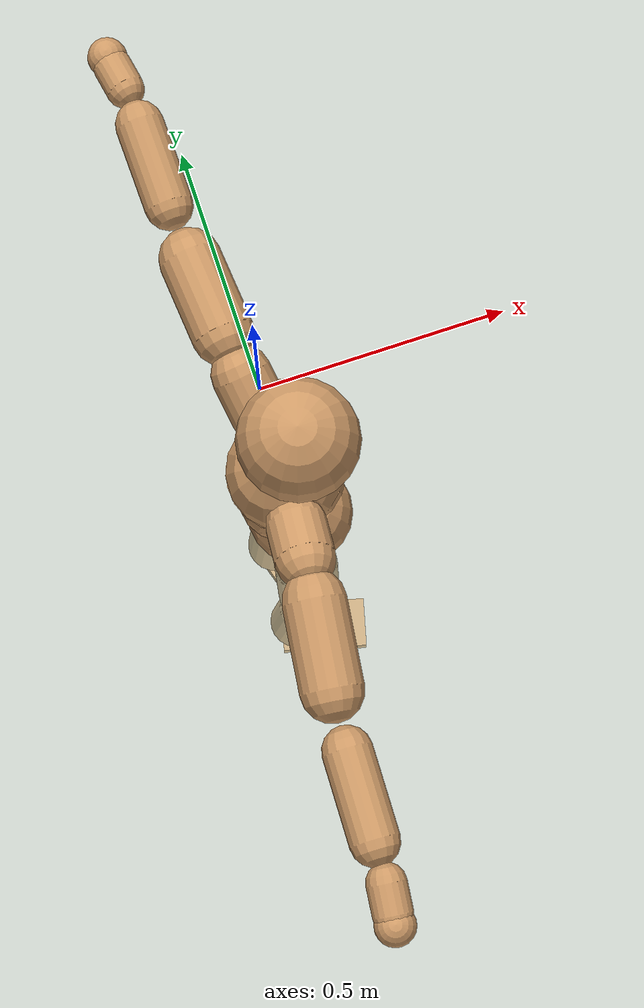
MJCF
<mujoco model="humanoid">
  <compiler coordinate="local"/>
  <default>
    <joint damping="0.0" armature="0.01" stiffness="0.0" limited="true"/>
    <geom conaffinity="1" condim="3" contype="7" margin="0.001" rgba="0.8 0.6 .4 1"/>
  </default>
  <asset>
    <texture type="skybox" builtin="gradient" rgb1=".4 .5 .6" rgb2="0 0 0" width="100" height="100"/>
    <texture builtin="flat" height="1278" mark="cross" markrgb="1 1 1" name="texgeom" random="0.01" rgb1="0.8 0.6 0.4" rgb2="0.8 0.6 0.4" type="cube" width="127"/>
    <texture builtin="checker" height="100" name="texplane" rgb1="0 0 0" rgb2="0.8 0.8 0.8" type="2d" width="100"/>
    <material name="MatPlane" reflectance="0.5" shininess="1" specular="1" texrepeat="60 60" texture="texplane"/>
    <material name="geom" texture="texgeom" texuniform="true"/>
  </asset>
  <worldbody>
    <light cutoff="100" diffuse="1 1 1" dir="-0 0 -1.3" directional="true" exponent="1" pos="0 0 1.3" specular=".1 .1 .1"/>
    <geom conaffinity="1" condim="3" name="floor" pos="0 0 0" rgba="0.8 0.9 0.8 1" size="100 100 .2" type="plane" material="MatPlane"/>
    <body name="Pelvis" pos="-0.0016 -0.2606 0.0297">
      <freejoint name="Pelvis"/>
      <geom type="sphere" contype="1" conaffinity="1" density="500" size="0.1016" pos="0.0000 0.0000 0.0000" name="Pelvis"/>
      <body name="L_Hip" pos="-0.0164 0.0609 -0.0854">
        <joint name="L_Hip_x" type="hinge" pos="0 0 0" axis="1 0 0" stiffness="800" damping="80" armature="0.02" range="-180.0000 180.0000"/>
        <joint name="L_Hip_y" type="hinge" pos="0 0 0" axis="0 1 0" stiffness="800" damping="80" armature="0.02" range="-180.0000 180.0000"/>
        <joint name="L_Hip_z" type="hinge" pos="0 0 0" axis="0 0 1" stiffness="800" damping="80" armature="0.02" range="-180.0000 180.0000"/>
        <geom type="capsule" contype="1" conaffinity="1" density="500" fromto="0.0015 0.0080 -0.0750 0.0060 0.0319 -0.3000" size="0.063" name="L_Hip"/>
        <body name="L_Knee" pos="0.0075 0.0399 -0.375">
          <joint name="L_Knee_x" type="hinge" pos="0 0 0" axis="1 0 0" stiffness="800" damping="80" armature="0.02" range="-180.0000 180.0000"/>
          <joint name="L_Knee_y" type="hinge" pos="0 0 0" axis="0 1 0" stiffness="800" damping="80" armature="0.02" range="-180.0000 180.0000"/>
          <joint name="L_Knee_z" type="hinge" pos="0 0 0" axis="0 0 1" stiffness="800" damping="80" armature="0.02" range="-180.0000 180.0000"/>
          <geom type="capsule" contype="1" conaffinity="1" density="500" fromto="-0.0078 -0.0032 -0.0834 -0.0314 -0.0126 -0.3338" size="0.0566" name="L_Knee"/>
          <body name="L_Ankle" pos="-0.0392 -0.0158 -0.4172">
            <joint name="L_Ankle_x" type="hinge" pos="0 0 0" axis="1 0 0" stiffness="800" damping="80" armature="0.02" range="-180.0000 180.0000"/>
            <joint name="L_Ankle_y" type="hinge" pos="0 0 0" axis="0 1 0" stiffness="800" damping="80" armature="0.02" range="-180.0000 180.0000"/>
            <joint name="L_Ankle_z" type="hinge" pos="0 0 0" axis="0 0 1" stiffness="800" damping="80" armature="0.02" range="-180.0000 180.0000"/>
            <geom type="box" contype="1" conaffinity="1" density="500" pos="0.0620 0.0193 -0.0299" size="0.0898 0.0517 0.0227" quat="0.9886 0.0000 0.0000 0.1505" name="L_Ankle"/>
            <body name="L_Toe" pos="0.1239 0.0386 -0.0599">
              <joint name="L_Toe_x" type="hinge" pos="0 0 0" axis="1 0 0" stiffness="500" damping="50" armature="0.02" range="-180.0000 180.0000"/>
              <joint name="L_Toe_y" type="hinge" pos="0 0 0" axis="0 1 0" stiffness="500" damping="50" armature="0.02" range="-180.0000 180.0000"/>
              <joint name="L_Toe_z" type="hinge" pos="0 0 0" axis="0 0 1" stiffness="500" damping="50" armature="0.02" range="-180.0000 180.0000"/>
              <geom type="box" contype="1" conaffinity="1" density="500" pos="0.0000 0.0000 0.0290" size="0.0011 0.0025 0.0011" quat="0.9878 0.0000 0.0000 0.1554" name="L_Toe"/>
            </body>
          </body>
        </body>
      </body>
      <body name="R_Hip" pos="-0.0119 -0.0626 -0.0939">
        <joint name="R_Hip_x" type="hinge" pos="0 0 0" axis="1 0 0" stiffness="800" damping="80" armature="0.02" range="-180.0000 180.0000"/>
        <joint name="R_Hip_y" type="hinge" pos="0 0 0" axis="0 1 0" stiffness="800" damping="80" armature="0.02" range="-180.0000 180.0000"/>
        <joint name="R_Hip_z" type="hinge" pos="0 0 0" axis="0 0 1" stiffness="800" damping="80" armature="0.02" range="-180.0000 180.0000"/>
        <geom type="capsule" contype="1" conaffinity="1" density="500" fromto="-0.0009 -0.0082 -0.0747 -0.0037 -0.0327 -0.2990" size="0.0626" name="R_Hip"/>
        <body name="R_Knee" pos="-0.0046 -0.0409 -0.3737">
          <joint name="R_Knee_x" type="hinge" pos="0 0 0" axis="1 0 0" stiffness="800" damping="80" armature="0.02" range="-180.0000 180.0000"/>
          <joint name="R_Knee_y" type="hinge" pos="0 0 0" axis="0 1 0" stiffness="800" damping="80" armature="0.02" range="-180.0000 180.0000"/>
          <joint name="R_Knee_z" type="hinge" pos="0 0 0" axis="0 0 1" stiffness="800" damping="80" armature="0.02" range="-180.0000 180.0000"/>
          <geom type="capsule" contype="1" conaffinity="1" density="500" fromto="-0.0073 0.0039 -0.0822 -0.0290 0.0157 -0.3287" size="0.0568" name="R_Knee"/>
          <body name="R_Ankle" pos="-0.0363 0.0196 -0.4108">
            <joint name="R_Ankle_x" type="hinge" pos="0 0 0" axis="1 0 0" stiffness="800" damping="80" armature="0.02" range="-180.0000 180.0000"/>
            <joint name="R_Ankle_y" type="hinge" pos="0 0 0" axis="0 1 0" stiffness="800" damping="80" armature="0.02" range="-180.0000 180.0000"/>
            <joint name="R_Ankle_z" type="hinge" pos="0 0 0" axis="0 0 1" stiffness="800" damping="80" armature="0.02" range="-180.0000 180.0000"/>
            <geom type="box" contype="1" conaffinity="1" density="500" pos="0.0663 -0.0171 -0.0306" size="0.092 0.0525 0.0224" quat="0.9920 0.0000 0.0000 -0.1259" name="R_Ankle"/>
            <body name="R_Toe" pos="0.1326 -0.0342 -0.0612">
              <joint name="R_Toe_x" type="hinge" pos="0 0 0" axis="1 0 0" stiffness="500" damping="50" armature="0.02" range="-180.0000 180.0000"/>
              <joint name="R_Toe_y" type="hinge" pos="0 0 0" axis="0 1 0" stiffness="500" damping="50" armature="0.02" range="-180.0000 180.0000"/>
              <joint name="R_Toe_z" type="hinge" pos="0 0 0" axis="0 0 1" stiffness="500" damping="50" armature="0.02" range="-180.0000 180.0000"/>
              <geom type="box" contype="1" conaffinity="1" density="500" pos="0.0000 0.0000 0.0312" size="0.0011 0.0026 0.0012" quat="0.9931 0.0000 0.0000 -0.1172" name="R_Toe"/>
            </body>
          </body>
        </body>
      </body>
      <body name="Torso" pos="-0.0401 0.0043 0.1307">
        <joint name="Torso_x" type="hinge" pos="0 0 0" axis="1 0 0" stiffness="1000" damping="100" armature="0.02" range="-180.0000 180.0000"/>
        <joint name="Torso_y" type="hinge" pos="0 0 0" axis="0 1 0" stiffness="1000" damping="100" armature="0.02" range="-180.0000 180.0000"/>
        <joint name="Torso_z" type="hinge" pos="0 0 0" axis="0 0 1" stiffness="1000" damping="100" armature="0.02" range="-180.0000 180.0000"/>
        <geom type="capsule" contype="1" conaffinity="1" density="500" fromto="0.0176 0.0032 0.0877 0.0117 0.0021 0.0585" size="0.086" name="Torso"/>
        <body name="Spine" pos="0.0293 0.0053 0.1462">
          <joint name="Spine_x" type="hinge" pos="0 0 0" axis="1 0 0" stiffness="1000" damping="100" armature="0.02" range="-180.0000 180.0000"/>
          <joint name="Spine_y" type="hinge" pos="0 0 0" axis="0 1 0" stiffness="1000" damping="100" armature="0.02" range="-180.0000 180.0000"/>
          <joint name="Spine_z" type="hinge" pos="0 0 0" axis="0 0 1" stiffness="1000" damping="100" armature="0.02" range="-180.0000 180.0000"/>
          <geom type="capsule" contype="1" conaffinity="1" density="500" fromto="0.0025 -0.0016 0.0359 0.0017 -0.0011 0.0239" size="0.084" name="Spine"/>
          <body name="Chest" pos="0.0041 -0.0027 0.0598">
            <joint name="Chest_x" type="hinge" pos="0 0 0" axis="1 0 0" stiffness="1000" damping="100" armature="0.02" range="-180.0000 180.0000"/>
            <joint name="Chest_y" type="hinge" pos="0 0 0" axis="0 1 0" stiffness="1000" damping="100" armature="0.02" range="-180.0000 180.0000"/>
            <joint name="Chest_z" type="hinge" pos="0 0 0" axis="0 0 1" stiffness="1000" damping="100" armature="0.02" range="-180.0000 180.0000"/>
            <geom type="capsule" contype="1" conaffinity="1" density="500" fromto="-0.0179 -0.0050 0.0912 -0.0119 -0.0033 0.0608" size="0.1054" name="Chest"/>
            <body name="Neck" pos="-0.0402 -0.0132 0.2209">
              <joint name="Neck_x" type="hinge" pos="0 0 0" axis="1 0 0" stiffness="500" damping="50" armature="0.02" range="-180.0000 180.0000"/>
              <joint name="Neck_y" type="hinge" pos="0 0 0" axis="0 1 0" stiffness="500" damping="50" armature="0.02" range="-180.0000 180.0000"/>
              <joint name="Neck_z" type="hinge" pos="0 0 0" axis="0 0 1" stiffness="500" damping="50" armature="0.02" range="-180.0000 180.0000"/>
              <geom type="capsule" contype="1" conaffinity="1" density="500" fromto="0.0103 0.0019 0.0180 0.0412 0.0076 0.0720" size="0.0468" name="Neck"/>
              <body name="Head" pos="0.0515 0.0095 0.0901">
                <joint name="Head_x" type="hinge" pos="0 0 0" axis="1 0 0" stiffness="500" damping="50" armature="0.02" range="-180.0000 180.0000"/>
                <joint name="Head_y" type="hinge" pos="0 0 0" axis="0 1 0" stiffness="500" damping="50" armature="0.02" range="-180.0000 180.0000"/>
                <joint name="Head_z" type="hinge" pos="0 0 0" axis="0 0 1" stiffness="500" damping="50" armature="0.02" range="-180.0000 180.0000"/>
                <geom type="sphere" contype="1" conaffinity="1" density="500" size="0.1072" pos="0.0000 0.0000 0.0000" name="Head"/>
              </body>
            </body>
            <body name="L_Thorax" pos="-0.0224 0.072 0.1182">
              <joint name="L_Thorax_x" type="hinge" pos="0 0 0" axis="1 0 0" stiffness="500" damping="50" armature="0.02" range="-180.0000 180.0000"/>
              <joint name="L_Thorax_y" type="hinge" pos="0 0 0" axis="0 1 0" stiffness="500" damping="50" armature="0.02" range="-180.0000 180.0000"/>
              <joint name="L_Thorax_z" type="hinge" pos="0 0 0" axis="0 0 1" stiffness="500" damping="50" armature="0.02" range="-180.0000 180.0000"/>
              <geom type="capsule" contype="1" conaffinity="1" density="500" fromto="-0.0040 0.0248 0.0087 -0.0161 0.0993 0.0349" size="0.054" name="L_Thorax"/>
              <body name="L_Shoulder" pos="-0.0201 0.1241 0.0436">
                <joint name="L_Shoulder_x" type="hinge" pos="0 0 0" axis="1 0 0" stiffness="500" damping="50" armature="0.02" range="-720.0000 720.0000"/>
                <joint name="L_Shoulder_y" type="hinge" pos="0 0 0" axis="0 1 0" stiffness="500" damping="50" armature="0.02" range="-720.0000 720.0000"/>
                <joint name="L_Shoulder_z" type="hinge" pos="0 0 0" axis="0 0 1" stiffness="500" damping="50" armature="0.02" range="-720.0000 720.0000"/>
                <geom type="capsule" contype="1" conaffinity="1" density="500" fromto="-0.0044 0.0508 -0.0027 -0.0178 0.2031 -0.0110" size="0.0562" name="L_Shoulder"/>
                <body name="L_Elbow" pos="-0.0222 0.2539 -0.0137">
                  <joint name="L_Elbow_x" type="hinge" pos="0 0 0" axis="1 0 0" stiffness="500" damping="50" armature="0.02" range="-720.0000 720.0000"/>
                  <joint name="L_Elbow_y" type="hinge" pos="0 0 0" axis="0 1 0" stiffness="500" damping="50" armature="0.02" range="-720.0000 720.0000"/>
                  <joint name="L_Elbow_z" type="hinge" pos="0 0 0" axis="0 0 1" stiffness="500" damping="50" armature="0.02" range="-720.0000 720.0000"/>
                  <geom type="capsule" contype="1" conaffinity="1" density="500" fromto="-0.0015 0.0528 0.0024 -0.0060 0.2111 0.0097" size="0.0438" name="L_Elbow"/>
                  <body name="L_Wrist" pos="-0.0074 0.2639 0.0121">
                    <joint name="L_Wrist_x" type="hinge" pos="0 0 0" axis="1 0 0" stiffness="300" damping="30" armature="0.02" range="-180.0000 180.0000"/>
                    <joint name="L_Wrist_y" type="hinge" pos="0 0 0" axis="0 1 0" stiffness="300" damping="30" armature="0.02" range="-180.0000 180.0000"/>
                    <joint name="L_Wrist_z" type="hinge" pos="0 0 0" axis="0 0 1" stiffness="300" damping="30" armature="0.02" range="-180.0000 180.0000"/>
                    <geom type="capsule" contype="1" conaffinity="1" density="500" fromto="-0.0031 0.0175 -0.0021 -0.0125 0.0701 -0.0085" size="0.0348" name="L_Wrist"/>
                    <body name="L_Hand" pos="-0.0156 0.0876 -0.0107">
                      <joint name="L_Hand_x" type="hinge" pos="0 0 0" axis="1 0 0" stiffness="300" damping="30" armature="0.02" range="-180.0000 180.0000"/>
                      <joint name="L_Hand_y" type="hinge" pos="0 0 0" axis="0 1 0" stiffness="300" damping="30" armature="0.02" range="-180.0000 180.0000"/>
                      <joint name="L_Hand_z" type="hinge" pos="0 0 0" axis="0 0 1" stiffness="300" damping="30" armature="0.02" range="-180.0000 180.0000"/>
                      <geom type="sphere" contype="1" conaffinity="1" density="500" size="0.0361" pos="0.0000 0.0000 0.0000" name="L_Hand"/>
                    </body>
                  </body>
                </body>
              </body>
            </body>
            <body name="R_Thorax" pos="-0.0267 -0.0837 0.1168">
              <joint name="R_Thorax_x" type="hinge" pos="0 0 0" axis="1 0 0" stiffness="500" damping="50" armature="0.02" range="-180.0000 180.0000"/>
              <joint name="R_Thorax_y" type="hinge" pos="0 0 0" axis="0 1 0" stiffness="500" damping="50" armature="0.02" range="-180.0000 180.0000"/>
              <joint name="R_Thorax_z" type="hinge" pos="0 0 0" axis="0 0 1" stiffness="500" damping="50" armature="0.02" range="-180.0000 180.0000"/>
              <geom type="capsule" contype="1" conaffinity="1" density="500" fromto="-0.0018 -0.0230 0.0090 -0.0072 -0.0920 0.0359" size="0.0541" name="R_Thorax"/>
              <body name="R_Shoulder" pos="-0.009 -0.1149 0.0449">
                <joint name="R_Shoulder_x" type="hinge" pos="0 0 0" axis="1 0 0" stiffness="500" damping="50" armature="0.02" range="-720.0000 720.0000"/>
                <joint name="R_Shoulder_y" type="hinge" pos="0 0 0" axis="0 1 0" stiffness="500" damping="50" armature="0.02" range="-720.0000 720.0000"/>
                <joint name="R_Shoulder_z" type="hinge" pos="0 0 0" axis="0 0 1" stiffness="500" damping="50" armature="0.02" range="-720.0000 720.0000"/>
                <geom type="capsule" contype="1" conaffinity="1" density="500" fromto="-0.0063 -0.0518 -0.0023 -0.0251 -0.2073 -0.0091" size="0.057" name="R_Shoulder"/>
                <body name="R_Elbow" pos="-0.0314 -0.2592 -0.0114">
                  <joint name="R_Elbow_x" type="hinge" pos="0 0 0" axis="1 0 0" stiffness="500" damping="50" armature="0.02" range="-720.0000 720.0000"/>
                  <joint name="R_Elbow_y" type="hinge" pos="0 0 0" axis="0 1 0" stiffness="500" damping="50" armature="0.02" range="-720.0000 720.0000"/>
                  <joint name="R_Elbow_z" type="hinge" pos="0 0 0" axis="0 0 1" stiffness="500" damping="50" armature="0.02" range="-720.0000 720.0000"/>
                  <geom type="capsule" contype="1" conaffinity="1" density="500" fromto="-0.0013 -0.0535 0.0013 -0.0052 -0.2141 0.0051" size="0.0446" name="R_Elbow"/>
                  <body name="R_Wrist" pos="-0.0065 -0.2676 0.0064">
                    <joint name="R_Wrist_x" type="hinge" pos="0 0 0" axis="1 0 0" stiffness="300" damping="30" armature="0.02" range="-180.0000 180.0000"/>
                    <joint name="R_Wrist_y" type="hinge" pos="0 0 0" axis="0 1 0" stiffness="300" damping="30" armature="0.02" range="-180.0000 180.0000"/>
                    <joint name="R_Wrist_z" type="hinge" pos="0 0 0" axis="0 0 1" stiffness="300" damping="30" armature="0.02" range="-180.0000 180.0000"/>
                    <geom type="capsule" contype="1" conaffinity="1" density="500" fromto="-0.0020 -0.0181 -0.0018 -0.0080 -0.0724 -0.0070" size="0.0358" name="R_Wrist"/>
                    <body name="R_Hand" pos="-0.01 -0.0904 -0.0088">
                      <joint name="R_Hand_x" type="hinge" pos="0 0 0" axis="1 0 0" stiffness="300" damping="30" armature="0.02" range="-180.0000 180.0000"/>
                      <joint name="R_Hand_y" type="hinge" pos="0 0 0" axis="0 1 0" stiffness="300" damping="30" armature="0.02" range="-180.0000 180.0000"/>
                      <joint name="R_Hand_z" type="hinge" pos="0 0 0" axis="0 0 1" stiffness="300" damping="30" armature="0.02" range="-180.0000 180.0000"/>
                      <geom type="sphere" contype="1" conaffinity="1" density="500" size="0.0369" pos="0.0000 0.0000 0.0000" name="R_Hand"/>
                    </body>
                  </body>
                </body>
              </body>
            </body>
          </body>
        </body>
      </body>
    </body>
  </worldbody>
  <actuator>
    <motor name="L_Hip_x" joint="L_Hip_x" gear="500"/>
    <motor name="L_Hip_y" joint="L_Hip_y" gear="500"/>
    <motor name="L_Hip_z" joint="L_Hip_z" gear="500"/>
    <motor name="L_Knee_x" joint="L_Knee_x" gear="500"/>
    <motor name="L_Knee_y" joint="L_Knee_y" gear="500"/>
    <motor name="L_Knee_z" joint="L_Knee_z" gear="500"/>
    <motor name="L_Ankle_x" joint="L_Ankle_x" gear="500"/>
    <motor name="L_Ankle_y" joint="L_Ankle_y" gear="500"/>
    <motor name="L_Ankle_z" joint="L_Ankle_z" gear="500"/>
    <motor name="L_Toe_x" joint="L_Toe_x" gear="500"/>
    <motor name="L_Toe_y" joint="L_Toe_y" gear="500"/>
    <motor name="L_Toe_z" joint="L_Toe_z" gear="500"/>
    <motor name="R_Hip_x" joint="R_Hip_x" gear="500"/>
    <motor name="R_Hip_y" joint="R_Hip_y" gear="500"/>
    <motor name="R_Hip_z" joint="R_Hip_z" gear="500"/>
    <motor name="R_Knee_x" joint="R_Knee_x" gear="500"/>
    <motor name="R_Knee_y" joint="R_Knee_y" gear="500"/>
    <motor name="R_Knee_z" joint="R_Knee_z" gear="500"/>
    <motor name="R_Ankle_x" joint="R_Ankle_x" gear="500"/>
    <motor name="R_Ankle_y" joint="R_Ankle_y" gear="500"/>
    <motor name="R_Ankle_z" joint="R_Ankle_z" gear="500"/>
    <motor name="R_Toe_x" joint="R_Toe_x" gear="500"/>
    <motor name="R_Toe_y" joint="R_Toe_y" gear="500"/>
    <motor name="R_Toe_z" joint="R_Toe_z" gear="500"/>
    <motor name="Torso_x" joint="Torso_x" gear="500"/>
    <motor name="Torso_y" joint="Torso_y" gear="500"/>
    <motor name="Torso_z" joint="Torso_z" gear="500"/>
    <motor name="Spine_x" joint="Spine_x" gear="500"/>
    <motor name="Spine_y" joint="Spine_y" gear="500"/>
    <motor name="Spine_z" joint="Spine_z" gear="500"/>
    <motor name="Chest_x" joint="Chest_x" gear="500"/>
    <motor name="Chest_y" joint="Chest_y" gear="500"/>
    <motor name="Chest_z" joint="Chest_z" gear="500"/>
    <motor name="Neck_x" joint="Neck_x" gear="500"/>
    <motor name="Neck_y" joint="Neck_y" gear="500"/>
    <motor name="Neck_z" joint="Neck_z" gear="500"/>
    <motor name="Head_x" joint="Head_x" gear="500"/>
    <motor name="Head_y" joint="Head_y" gear="500"/>
    <motor name="Head_z" joint="Head_z" gear="500"/>
    <motor name="L_Thorax_x" joint="L_Thorax_x" gear="500"/>
    <motor name="L_Thorax_y" joint="L_Thorax_y" gear="500"/>
    <motor name="L_Thorax_z" joint="L_Thorax_z" gear="500"/>
    <motor name="L_Shoulder_x" joint="L_Shoulder_x" gear="500"/>
    <motor name="L_Shoulder_y" joint="L_Shoulder_y" gear="500"/>
    <motor name="L_Shoulder_z" joint="L_Shoulder_z" gear="500"/>
    <motor name="L_Elbow_x" joint="L_Elbow_x" gear="500"/>
    <motor name="L_Elbow_y" joint="L_Elbow_y" gear="500"/>
    <motor name="L_Elbow_z" joint="L_Elbow_z" gear="500"/>
    <motor name="L_Wrist_x" joint="L_Wrist_x" gear="500"/>
    <motor name="L_Wrist_y" joint="L_Wrist_y" gear="500"/>
    <motor name="L_Wrist_z" joint="L_Wrist_z" gear="500"/>
    <motor name="L_Hand_x" joint="L_Hand_x" gear="500"/>
    <motor name="L_Hand_y" joint="L_Hand_y" gear="500"/>
    <motor name="L_Hand_z" joint="L_Hand_z" gear="500"/>
    <motor name="R_Thorax_x" joint="R_Thorax_x" gear="500"/>
    <motor name="R_Thorax_y" joint="R_Thorax_y" gear="500"/>
    <motor name="R_Thorax_z" joint="R_Thorax_z" gear="500"/>
    <motor name="R_Shoulder_x" joint="R_Shoulder_x" gear="500"/>
    <motor name="R_Shoulder_y" joint="R_Shoulder_y" gear="500"/>
    <motor name="R_Shoulder_z" joint="R_Shoulder_z" gear="500"/>
    <motor name="R_Elbow_x" joint="R_Elbow_x" gear="500"/>
    <motor name="R_Elbow_y" joint="R_Elbow_y" gear="500"/>
    <motor name="R_Elbow_z" joint="R_Elbow_z" gear="500"/>
    <motor name="R_Wrist_x" joint="R_Wrist_x" gear="500"/>
    <motor name="R_Wrist_y" joint="R_Wrist_y" gear="500"/>
    <motor name="R_Wrist_z" joint="R_Wrist_z" gear="500"/>
    <motor name="R_Hand_x" joint="R_Hand_x" gear="500"/>
    <motor name="R_Hand_y" joint="R_Hand_y" gear="500"/>
    <motor name="R_Hand_z" joint="R_Hand_z" gear="500"/>
  </actuator>
  <contact>
    <exclude body1="Torso" body2="Chest"/>
    <exclude body1="Head" body2="Chest"/>
    <exclude body1="R_Knee" body2="R_Toe"/>
    <exclude body1="R_Knee" body2="L_Ankle"/>
    <exclude body1="R_Knee" body2="L_Toe"/>
    <exclude body1="L_Knee" body2="L_Toe"/>
    <exclude body1="L_Knee" body2="R_Ankle"/>
    <exclude body1="L_Knee" body2="R_Toe"/>
    <exclude body1="L_Shoulder" body2="Chest"/>
    <exclude body1="R_Shoulder" body2="Chest"/>
  </contact>
  <sensor/>
  <size njmax="700" nconmax="700"/>
</mujoco>
